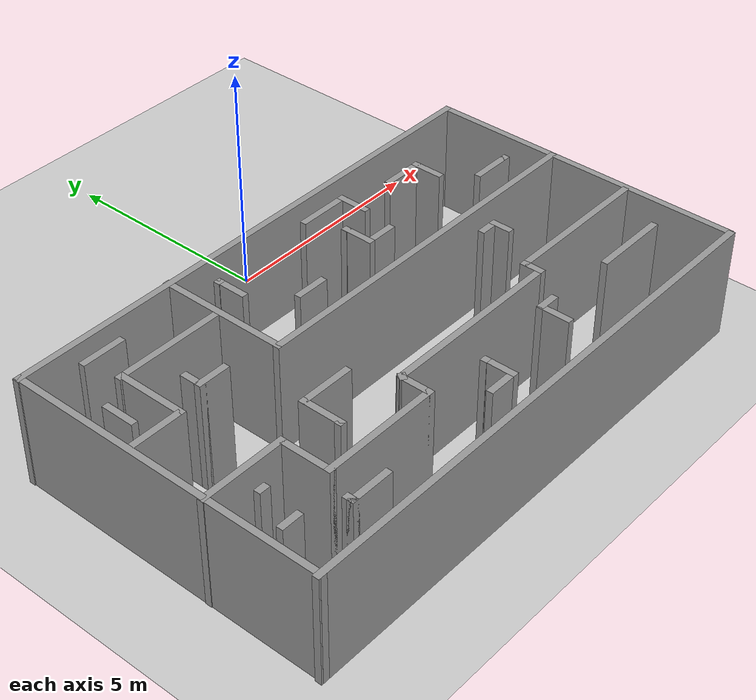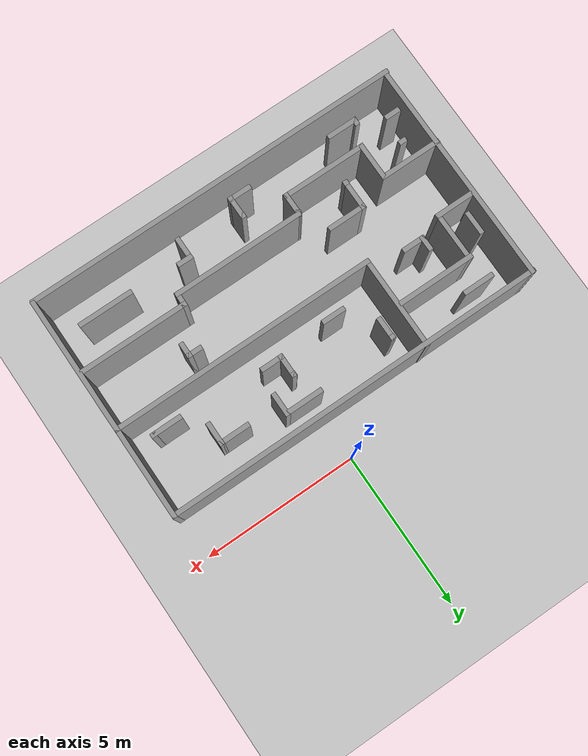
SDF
<?xml version="1.0" ?>
<sdf version="1.7">
  <world name="default">
    <include>
      <uri>model://sun</uri>
    </include>

    <include>
      <uri>model://ground_plane</uri>
    </include>

    <model name='project_map'>
      <pose>-0.977604 -4.28119 0 0 -0 0</pose>
      <link name='Wall_0'>
        <collision name='Wall_0_Collision'>
          <geometry>
            <box>
              <size>12.1867 0.15 2.5</size>
            </box>
          </geometry>
          <pose>0 0 1.25 0 -0 0</pose>
        </collision>
        <visual name='Wall_0_Visual'>
          <pose>0 0 1.25 0 -0 0</pose>
          <geometry>
            <box>
              <size>12.1867 0.15 2.5</size>
            </box>
          </geometry>
          <material>
            <script>
              <uri>file://media/materials/scripts/gazebo.material</uri>
              <name>Gazebo/Grey</name>
            </script>
            <ambient>1 1 1 1</ambient>
          </material>
          <meta>
            <layer>0</layer>
          </meta>
        </visual>
        <pose>0.010057 2.94007 0 0 -0 3.14159</pose>
      </link>
      <link name='Wall_101'>
        <collision name='Wall_101_Collision'>
          <geometry>
            <box>
              <size>0.25 0.15 2.5</size>
            </box>
          </geometry>
          <pose>0 0 1.25 0 -0 0</pose>
        </collision>
        <visual name='Wall_101_Visual'>
          <pose>0 0 1.25 0 -0 0</pose>
          <geometry>
            <box>
              <size>0.25 0.15 2.5</size>
            </box>
          </geometry>
          <material>
            <script>
              <uri>file://media/materials/scripts/gazebo.material</uri>
              <name>Gazebo/Grey</name>
            </script>
            <ambient>1 1 1 1</ambient>
          </material>
          <meta>
            <layer>0</layer>
          </meta>
        </visual>
        <pose>-4.43257 -3.45944 0 0 -0 -1.5708</pose>
      </link>
      <link name='Wall_102'>
        <collision name='Wall_102_Collision'>
          <geometry>
            <box>
              <size>1 0.15 2.5</size>
            </box>
          </geometry>
          <pose>0 0 1.25 0 -0 0</pose>
        </collision>
        <visual name='Wall_102_Visual'>
          <pose>0 0 1.25 0 -0 0</pose>
          <geometry>
            <box>
              <size>1 0.15 2.5</size>
            </box>
          </geometry>
          <material>
            <script>
              <uri>file://media/materials/scripts/gazebo.material</uri>
              <name>Gazebo/Grey</name>
            </script>
            <ambient>1 1 1 1</ambient>
          </material>
          <meta>
            <layer>0</layer>
          </meta>
        </visual>
        <pose>-4.00757 -3.50944 0 0 -0 0</pose>
      </link>
      <link name='Wall_107'>
        <collision name='Wall_107_Collision'>
          <geometry>
            <box>
              <size>0.5 0.15 2.5</size>
            </box>
          </geometry>
          <pose>0 0 1.25 0 -0 0</pose>
        </collision>
        <visual name='Wall_107_Visual'>
          <pose>0 0 1.25 0 -0 0</pose>
          <geometry>
            <box>
              <size>0.5 0.15 2.5</size>
            </box>
          </geometry>
          <material>
            <script>
              <uri>file://media/materials/scripts/gazebo.material</uri>
              <name>Gazebo/Grey</name>
            </script>
            <ambient>1 1 1 1</ambient>
          </material>
          <meta>
            <layer>0</layer>
          </meta>
        </visual>
        <pose>1.869 -2.7974 0 0 -0 3.14159</pose>
      </link>
      <link name='Wall_108'>
        <collision name='Wall_108_Collision'>
          <geometry>
            <box>
              <size>0.75 0.15 2.5</size>
            </box>
          </geometry>
          <pose>0 0 1.25 0 -0 0</pose>
        </collision>
        <visual name='Wall_108_Visual'>
          <pose>0 0 1.25 0 -0 0</pose>
          <geometry>
            <box>
              <size>0.75 0.15 2.5</size>
            </box>
          </geometry>
          <material>
            <script>
              <uri>file://media/materials/scripts/gazebo.material</uri>
              <name>Gazebo/Grey</name>
            </script>
            <ambient>1 1 1 1</ambient>
          </material>
          <meta>
            <layer>0</layer>
          </meta>
        </visual>
        <pose>1.694 -3.0974 0 0 -0 -1.5708</pose>
      </link>
      <link name='Wall_110'>
        <collision name='Wall_110_Collision'>
          <geometry>
            <box>
              <size>0.25 0.15 2.5</size>
            </box>
          </geometry>
          <pose>0 0 1.25 0 -0 0</pose>
        </collision>
        <visual name='Wall_110_Visual'>
          <pose>0 0 1.25 0 -0 0</pose>
          <geometry>
            <box>
              <size>0.25 0.15 2.5</size>
            </box>
          </geometry>
          <material>
            <script>
              <uri>file://media/materials/scripts/gazebo.material</uri>
              <name>Gazebo/Grey</name>
            </script>
            <ambient>1 1 1 1</ambient>
          </material>
          <meta>
            <layer>0</layer>
          </meta>
        </visual>
        <pose>-5.20723 -2.2141 0 0 -0 0</pose>
      </link>
      <link name='Wall_113'>
        <collision name='Wall_113_Collision'>
          <geometry>
            <box>
              <size>1 0.15 2.5</size>
            </box>
          </geometry>
          <pose>0 0 1.25 0 -0 0</pose>
        </collision>
        <visual name='Wall_113_Visual'>
          <pose>0 0 1.25 0 -0 0</pose>
          <geometry>
            <box>
              <size>1 0.15 2.5</size>
            </box>
          </geometry>
          <material>
            <script>
              <uri>file://media/materials/scripts/gazebo.material</uri>
              <name>Gazebo/Grey</name>
            </script>
            <ambient>1 1 1 1</ambient>
          </material>
          <meta>
            <layer>0</layer>
          </meta>
        </visual>
        <pose>3.45457 2.02986 0 0 -0 0</pose>
      </link>
      <link name='Wall_114'>
        <collision name='Wall_114_Collision'>
          <geometry>
            <box>
              <size>0.75 0.15 2.5</size>
            </box>
          </geometry>
          <pose>0 0 1.25 0 -0 0</pose>
        </collision>
        <visual name='Wall_114_Visual'>
          <pose>0 0 1.25 0 -0 0</pose>
          <geometry>
            <box>
              <size>0.75 0.15 2.5</size>
            </box>
          </geometry>
          <material>
            <script>
              <uri>file://media/materials/scripts/gazebo.material</uri>
              <name>Gazebo/Grey</name>
            </script>
            <ambient>1 1 1 1</ambient>
          </material>
          <meta>
            <layer>0</layer>
          </meta>
        </visual>
        <pose>3.87956 1.72986 0 0 -0 -1.5708</pose>
      </link>
      <link name='Wall_116'>
        <collision name='Wall_116_Collision'>
          <geometry>
            <box>
              <size>0.16 0.15 2.5</size>
            </box>
          </geometry>
          <pose>0 0 1.25 0 -0 0</pose>
        </collision>
        <visual name='Wall_116_Visual'>
          <pose>0 0 1.25 0 -0 0</pose>
          <geometry>
            <box>
              <size>0.16 0.15 2.5</size>
            </box>
          </geometry>
          <material>
            <script>
              <uri>file://media/materials/scripts/gazebo.material</uri>
              <name>Gazebo/Grey</name>
            </script>
            <ambient>1 1 1 1</ambient>
          </material>
          <meta>
            <layer>0</layer>
          </meta>
        </visual>
        <pose>5.28728 0.802933 0 0 -0 0</pose>
      </link>
      <link name='Wall_117'>
        <collision name='Wall_117_Collision'>
          <geometry>
            <box>
              <size>1 0.15 2.5</size>
            </box>
          </geometry>
          <pose>0 0 1.25 0 -0 0</pose>
        </collision>
        <visual name='Wall_117_Visual'>
          <pose>0 0 1.25 0 -0 0</pose>
          <geometry>
            <box>
              <size>1 0.15 2.5</size>
            </box>
          </geometry>
          <material>
            <script>
              <uri>file://media/materials/scripts/gazebo.material</uri>
              <name>Gazebo/Grey</name>
            </script>
            <ambient>1 1 1 1</ambient>
          </material>
          <meta>
            <layer>0</layer>
          </meta>
        </visual>
        <pose>4.86728 0.802933 0 0 -0 3.14159</pose>
      </link>
      <link name='Wall_119'>
        <collision name='Wall_119_Collision'>
          <geometry>
            <box>
              <size>0.5 0.15 2.5</size>
            </box>
          </geometry>
          <pose>0 0 1.25 0 -0 0</pose>
        </collision>
        <visual name='Wall_119_Visual'>
          <pose>0 0 1.25 0 -0 0</pose>
          <geometry>
            <box>
              <size>0.5 0.15 2.5</size>
            </box>
          </geometry>
          <material>
            <script>
              <uri>file://media/materials/scripts/gazebo.material</uri>
              <name>Gazebo/Grey</name>
            </script>
            <ambient>1 1 1 1</ambient>
          </material>
          <meta>
            <layer>0</layer>
          </meta>
        </visual>
        <pose>3.08684 -0.484335 0 0 -0 0</pose>
      </link>
      <link name='Wall_120'>
        <collision name='Wall_120_Collision'>
          <geometry>
            <box>
              <size>0.5 0.15 2.5</size>
            </box>
          </geometry>
          <pose>0 0 1.25 0 -0 0</pose>
        </collision>
        <visual name='Wall_120_Visual'>
          <pose>0 0 1.25 0 -0 0</pose>
          <geometry>
            <box>
              <size>0.5 0.15 2.5</size>
            </box>
          </geometry>
          <material>
            <script>
              <uri>file://media/materials/scripts/gazebo.material</uri>
              <name>Gazebo/Grey</name>
            </script>
            <ambient>1 1 1 1</ambient>
          </material>
          <meta>
            <layer>0</layer>
          </meta>
        </visual>
        <pose>3.26184 -0.659335 0 0 -0 -1.5708</pose>
      </link>
      <link name='Wall_122'>
        <collision name='Wall_122_Collision'>
          <geometry>
            <box>
              <size>0.5 0.15 2.5</size>
            </box>
          </geometry>
          <pose>0 0 1.25 0 -0 0</pose>
        </collision>
        <visual name='Wall_122_Visual'>
          <pose>0 0 1.25 0 -0 0</pose>
          <geometry>
            <box>
              <size>0.5 0.15 2.5</size>
            </box>
          </geometry>
          <material>
            <script>
              <uri>file://media/materials/scripts/gazebo.material</uri>
              <name>Gazebo/Grey</name>
            </script>
            <ambient>1 1 1 1</ambient>
          </material>
          <meta>
            <layer>0</layer>
          </meta>
        </visual>
        <pose>-4.01018 0.60782 0 0 -0 -1.5708</pose>
      </link>
      <link name='Wall_123'>
        <collision name='Wall_123_Collision'>
          <geometry>
            <box>
              <size>0.75 0.15 2.5</size>
            </box>
          </geometry>
          <pose>0 0 1.25 0 -0 0</pose>
        </collision>
        <visual name='Wall_123_Visual'>
          <pose>0 0 1.25 0 -0 0</pose>
          <geometry>
            <box>
              <size>0.75 0.15 2.5</size>
            </box>
          </geometry>
          <material>
            <script>
              <uri>file://media/materials/scripts/gazebo.material</uri>
              <name>Gazebo/Grey</name>
            </script>
            <ambient>1 1 1 1</ambient>
          </material>
          <meta>
            <layer>0</layer>
          </meta>
        </visual>
        <pose>-3.71019 0.43282 0 0 -0 0</pose>
      </link>
      <link name='Wall_125'>
        <collision name='Wall_125_Collision'>
          <geometry>
            <box>
              <size>0.16 0.15 2.5</size>
            </box>
          </geometry>
          <pose>0 0 1.25 0 -0 0</pose>
        </collision>
        <visual name='Wall_125_Visual'>
          <pose>0 0 1.25 0 -0 0</pose>
          <geometry>
            <box>
              <size>0.16 0.15 2.5</size>
            </box>
          </geometry>
          <material>
            <script>
              <uri>file://media/materials/scripts/gazebo.material</uri>
              <name>Gazebo/Grey</name>
            </script>
            <ambient>1 1 1 1</ambient>
          </material>
          <meta>
            <layer>0</layer>
          </meta>
        </visual>
        <pose>-3.16041 -2.11354 0 0 -0 0</pose>
      </link>
      <link name='Wall_126'>
        <collision name='Wall_126_Collision'>
          <geometry>
            <box>
              <size>1 0.15 2.5</size>
            </box>
          </geometry>
          <pose>0 0 1.25 0 -0 0</pose>
        </collision>
        <visual name='Wall_126_Visual'>
          <pose>0 0 1.25 0 -0 0</pose>
          <geometry>
            <box>
              <size>1 0.15 2.5</size>
            </box>
          </geometry>
          <material>
            <script>
              <uri>file://media/materials/scripts/gazebo.material</uri>
              <name>Gazebo/Grey</name>
            </script>
            <ambient>1 1 1 1</ambient>
          </material>
          <meta>
            <layer>0</layer>
          </meta>
        </visual>
        <pose>-3.15542 -1.68853 0 0 -0 1.5708</pose>
      </link>
      <link name='Wall_127'>
        <collision name='Wall_127_Collision'>
          <geometry>
            <box>
              <size>1.25 0.15 2.5</size>
            </box>
          </geometry>
          <pose>0 0 1.25 0 -0 0</pose>
        </collision>
        <visual name='Wall_127_Visual'>
          <pose>0 0 1.25 0 -0 0</pose>
          <geometry>
            <box>
              <size>1.25 0.15 2.5</size>
            </box>
          </geometry>
          <material>
            <script>
              <uri>file://media/materials/scripts/gazebo.material</uri>
              <name>Gazebo/Grey</name>
            </script>
            <ambient>1 1 1 1</ambient>
          </material>
          <meta>
            <layer>0</layer>
          </meta>
        </visual>
        <pose>-2.60541 -1.26354 0 0 -0 0</pose>
      </link>
      <link name='Wall_21'>
        <collision name='Wall_21_Collision'>
          <geometry>
            <box>
              <size>0.75 0.15 2.5</size>
            </box>
          </geometry>
          <pose>0 0 1.25 0 -0 0</pose>
        </collision>
        <visual name='Wall_21_Visual'>
          <pose>0 0 1.25 0 -0 0</pose>
          <geometry>
            <box>
              <size>0.75 0.15 2.5</size>
            </box>
          </geometry>
          <material>
            <script>
              <uri>file://media/materials/scripts/gazebo.material</uri>
              <name>Gazebo/Grey</name>
            </script>
            <ambient>1 1 1 1</ambient>
          </material>
          <meta>
            <layer>0</layer>
          </meta>
        </visual>
        <pose>-0.673036 0.84316 0 0 -0 0</pose>
      </link>
      <link name='Wall_23'>
        <collision name='Wall_23_Collision'>
          <geometry>
            <box>
              <size>0.16 0.15 2.5</size>
            </box>
          </geometry>
          <pose>0 0 1.25 0 -0 0</pose>
        </collision>
        <visual name='Wall_23_Visual'>
          <pose>0 0 1.25 0 -0 0</pose>
          <geometry>
            <box>
              <size>0.16 0.15 2.5</size>
            </box>
          </geometry>
          <material>
            <script>
              <uri>file://media/materials/scripts/gazebo.material</uri>
              <name>Gazebo/Grey</name>
            </script>
            <ambient>1 1 1 1</ambient>
          </material>
          <meta>
            <layer>0</layer>
          </meta>
        </visual>
        <pose>-1.67201 2.27122 0 0 -0 0</pose>
      </link>
      <link name='Wall_24'>
        <collision name='Wall_24_Collision'>
          <geometry>
            <box>
              <size>0.75 0.15 2.5</size>
            </box>
          </geometry>
          <pose>0 0 1.25 0 -0 0</pose>
        </collision>
        <visual name='Wall_24_Visual'>
          <pose>0 0 1.25 0 -0 0</pose>
          <geometry>
            <box>
              <size>0.75 0.15 2.5</size>
            </box>
          </geometry>
          <material>
            <script>
              <uri>file://media/materials/scripts/gazebo.material</uri>
              <name>Gazebo/Grey</name>
            </script>
            <ambient>1 1 1 1</ambient>
          </material>
          <meta>
            <layer>0</layer>
          </meta>
        </visual>
        <pose>-1.66701 1.97122 0 0 -0 -1.5708</pose>
      </link>
      <link name='Wall_42'>
        <collision name='Wall_42_Collision'>
          <geometry>
            <box>
              <size>1.25 0.15 2.5</size>
            </box>
          </geometry>
          <pose>0 0 1.25 0 -0 0</pose>
        </collision>
        <visual name='Wall_42_Visual'>
          <pose>0 0 1.25 0 -0 0</pose>
          <geometry>
            <box>
              <size>1.25 0.15 2.5</size>
            </box>
          </geometry>
          <material>
            <script>
              <uri>file://media/materials/scripts/gazebo.material</uri>
              <name>Gazebo/Grey</name>
            </script>
            <ambient>1 1 1 1</ambient>
          </material>
          <meta>
            <layer>0</layer>
          </meta>
        </visual>
        <pose>1.39343 2.37179 0 0 -0 3.14159</pose>
      </link>
      <link name='Wall_46'>
        <collision name='Wall_46_Collision'>
          <geometry>
            <box>
              <size>0.16 0.15 2.5</size>
            </box>
          </geometry>
          <pose>0 0 1.25 0 -0 0</pose>
        </collision>
        <visual name='Wall_46_Visual'>
          <pose>0 0 1.25 0 -0 0</pose>
          <geometry>
            <box>
              <size>0.16 0.15 2.5</size>
            </box>
          </geometry>
          <material>
            <script>
              <uri>file://media/materials/scripts/gazebo.material</uri>
              <name>Gazebo/Grey</name>
            </script>
            <ambient>1 1 1 1</ambient>
          </material>
          <meta>
            <layer>0</layer>
          </meta>
        </visual>
        <pose>1.18412 1.58736 0 0 -0 0</pose>
      </link>
      <link name='Wall_47'>
        <collision name='Wall_47_Collision'>
          <geometry>
            <box>
              <size>0.75 0.15 2.5</size>
            </box>
          </geometry>
          <pose>0 0 1.25 0 -0 0</pose>
        </collision>
        <visual name='Wall_47_Visual'>
          <pose>0 0 1.25 0 -0 0</pose>
          <geometry>
            <box>
              <size>0.75 0.15 2.5</size>
            </box>
          </geometry>
          <material>
            <script>
              <uri>file://media/materials/scripts/gazebo.material</uri>
              <name>Gazebo/Grey</name>
            </script>
            <ambient>1 1 1 1</ambient>
          </material>
          <meta>
            <layer>0</layer>
          </meta>
        </visual>
        <pose>1.18912 1.28736 0 0 -0 -1.5708</pose>
      </link>
      <link name='Wall_48'>
        <collision name='Wall_48_Collision'>
          <geometry>
            <box>
              <size>0.75 0.15 2.5</size>
            </box>
          </geometry>
          <pose>0 0 1.25 0 -0 0</pose>
        </collision>
        <visual name='Wall_48_Visual'>
          <pose>0 0 1.25 0 -0 0</pose>
          <geometry>
            <box>
              <size>0.75 0.15 2.5</size>
            </box>
          </geometry>
          <material>
            <script>
              <uri>file://media/materials/scripts/gazebo.material</uri>
              <name>Gazebo/Grey</name>
            </script>
            <ambient>1 1 1 1</ambient>
          </material>
          <meta>
            <layer>0</layer>
          </meta>
        </visual>
        <pose>1.48912 0.987363 0 0 -0 0</pose>
      </link>
      <link name='Wall_50'>
        <collision name='Wall_50_Collision'>
          <geometry>
            <box>
              <size>7.29661 0.15 2.5</size>
            </box>
          </geometry>
          <pose>0 0 1.25 0 -0 0</pose>
        </collision>
        <visual name='Wall_50_Visual'>
          <pose>0 0 1.25 0 -0 0</pose>
          <geometry>
            <box>
              <size>7.29661 0.15 2.5</size>
            </box>
          </geometry>
          <material>
            <script>
              <uri>file://media/materials/scripts/gazebo.material</uri>
              <name>Gazebo/Grey</name>
            </script>
            <ambient>1 1 1 1</ambient>
          </material>
          <meta>
            <layer>0</layer>
          </meta>
        </visual>
        <pose>-5.98818 -0.632878 0 0 -0 -1.5708</pose>
      </link>
      <link name='Wall_53'>
        <collision name='Wall_53_Collision'>
          <geometry>
            <box>
              <size>12.1867 0.15 2.5</size>
            </box>
          </geometry>
          <pose>0 0 1.25 0 -0 0</pose>
        </collision>
        <visual name='Wall_53_Visual'>
          <pose>0 0 1.25 0 -0 0</pose>
          <geometry>
            <box>
              <size>12.1867 0.15 2.5</size>
            </box>
          </geometry>
          <material>
            <script>
              <uri>file://media/materials/scripts/gazebo.material</uri>
              <name>Gazebo/Grey</name>
            </script>
            <ambient>1 1 1 1</ambient>
          </material>
          <meta>
            <layer>0</layer>
          </meta>
        </visual>
        <pose>-0.010057 -4.20583 0 0 -0 3.14159</pose>
      </link>
      <link name='Wall_57'>
        <collision name='Wall_57_Collision'>
          <geometry>
            <box>
              <size>1.62068 0.15 2.5</size>
            </box>
          </geometry>
          <pose>0 0 1.25 0 -0 0</pose>
        </collision>
        <visual name='Wall_57_Visual'>
          <pose>0 0 1.25 0 -0 0</pose>
          <geometry>
            <box>
              <size>1.62068 0.15 2.5</size>
            </box>
          </geometry>
          <material>
            <script>
              <uri>file://media/materials/scripts/gazebo.material</uri>
              <name>Gazebo/Grey</name>
            </script>
            <ambient>1 1 1 1</ambient>
          </material>
          <meta>
            <layer>0</layer>
          </meta>
        </visual>
        <pose>-4.7591 0.887185 0 0 -0 -1.5708</pose>
      </link>
      <link name='Wall_58'>
        <collision name='Wall_58_Collision'>
          <geometry>
            <box>
              <size>1.25 0.15 2.5</size>
            </box>
          </geometry>
          <pose>0 0 1.25 0 -0 0</pose>
        </collision>
        <visual name='Wall_58_Visual'>
          <pose>0 0 1.25 0 -0 0</pose>
          <geometry>
            <box>
              <size>1.25 0.15 2.5</size>
            </box>
          </geometry>
          <material>
            <script>
              <uri>file://media/materials/scripts/gazebo.material</uri>
              <name>Gazebo/Grey</name>
            </script>
            <ambient>1 1 1 1</ambient>
          </material>
          <meta>
            <layer>0</layer>
          </meta>
        </visual>
        <pose>-5.3091 0.151844 0 0 -0 3.14159</pose>
      </link>
      <link name='Wall_60'>
        <collision name='Wall_60_Collision'>
          <geometry>
            <box>
              <size>3 0.15 2.5</size>
            </box>
          </geometry>
          <pose>0 0 1.25 0 -0 0</pose>
        </collision>
        <visual name='Wall_60_Visual'>
          <pose>0 0 1.25 0 -0 0</pose>
          <geometry>
            <box>
              <size>3 0.15 2.5</size>
            </box>
          </geometry>
          <material>
            <script>
              <uri>file://media/materials/scripts/gazebo.material</uri>
              <name>Gazebo/Grey</name>
            </script>
            <ambient>1 1 1 1</ambient>
          </material>
          <meta>
            <layer>0</layer>
          </meta>
        </visual>
        <pose>-2.33728 1.53662 0 0 -0 1.5708</pose>
      </link>
      <link name='Wall_62'>
        <collision name='Wall_62_Collision'>
          <geometry>
            <box>
              <size>1 0.15 2.5</size>
            </box>
          </geometry>
          <pose>0 0 1.25 0 -0 0</pose>
        </collision>
        <visual name='Wall_62_Visual'>
          <pose>0 0 1.25 0 -0 0</pose>
          <geometry>
            <box>
              <size>1 0.15 2.5</size>
            </box>
          </geometry>
          <material>
            <script>
              <uri>file://media/materials/scripts/gazebo.material</uri>
              <name>Gazebo/Grey</name>
            </script>
            <ambient>1 1 1 1</ambient>
          </material>
          <meta>
            <layer>0</layer>
          </meta>
        </visual>
        <pose>-4.53052 2.3919 0 0 -0 0</pose>
      </link>
      <link name='Wall_67'>
        <collision name='Wall_67_Collision'>
          <geometry>
            <box>
              <size>0.75 0.15 2.5</size>
            </box>
          </geometry>
          <pose>0 0 1.25 0 -0 0</pose>
        </collision>
        <visual name='Wall_67_Visual'>
          <pose>0 0 1.25 0 -0 0</pose>
          <geometry>
            <box>
              <size>0.75 0.15 2.5</size>
            </box>
          </geometry>
          <material>
            <script>
              <uri>file://media/materials/scripts/gazebo.material</uri>
              <name>Gazebo/Grey</name>
            </script>
            <ambient>1 1 1 1</ambient>
          </material>
          <meta>
            <layer>0</layer>
          </meta>
        </visual>
        <pose>-5.47848 0.901798 0 0 -0 1.5708</pose>
      </link>
      <link name='Wall_71'>
        <collision name='Wall_71_Collision'>
          <geometry>
            <box>
              <size>8.5 0.15 2.5</size>
            </box>
          </geometry>
          <pose>0 0 1.25 0 -0 0</pose>
        </collision>
        <visual name='Wall_71_Visual'>
          <pose>0 0 1.25 0 -0 0</pose>
          <geometry>
            <box>
              <size>8.5 0.15 2.5</size>
            </box>
          </geometry>
          <material>
            <script>
              <uri>file://media/materials/scripts/gazebo.material</uri>
              <name>Gazebo/Grey</name>
            </script>
            <ambient>1 1 1 1</ambient>
          </material>
          <meta>
            <layer>0</layer>
          </meta>
        </visual>
        <pose>1.83772 0.111617 0 0 -0 0</pose>
      </link>
      <link name='Wall_74'>
        <collision name='Wall_74_Collision'>
          <geometry>
            <box>
              <size>0.75 0.15 2.5</size>
            </box>
          </geometry>
          <pose>0 0 1.25 0 -0 0</pose>
        </collision>
        <visual name='Wall_74_Visual'>
          <pose>0 0 1.25 0 -0 0</pose>
          <geometry>
            <box>
              <size>0.75 0.15 2.5</size>
            </box>
          </geometry>
          <material>
            <script>
              <uri>file://media/materials/scripts/gazebo.material</uri>
              <name>Gazebo/Grey</name>
            </script>
            <ambient>1 1 1 1</ambient>
          </material>
          <meta>
            <layer>0</layer>
          </meta>
        </visual>
        <pose>1.94343 2.07179 0 0 -0 -1.5708</pose>
      </link>
      <link name='Wall_76'>
        <collision name='Wall_76_Collision'>
          <geometry>
            <box>
              <size>2 0.15 2.5</size>
            </box>
          </geometry>
          <pose>0 0 1.25 0 -0 0</pose>
        </collision>
        <visual name='Wall_76_Visual'>
          <pose>0 0 1.25 0 -0 0</pose>
          <geometry>
            <box>
              <size>2 0.15 2.5</size>
            </box>
          </geometry>
          <material>
            <script>
              <uri>file://media/materials/scripts/gazebo.material</uri>
              <name>Gazebo/Grey</name>
            </script>
            <ambient>1 1 1 1</ambient>
          </material>
          <meta>
            <layer>0</layer>
          </meta>
        </visual>
        <pose>-5.07643 -1.65092 0 0 -0 0</pose>
      </link>
      <link name='Wall_77'>
        <collision name='Wall_77_Collision'>
          <geometry>
            <box>
              <size>1.25 0.15 2.5</size>
            </box>
          </geometry>
          <pose>0 0 1.25 0 -0 0</pose>
        </collision>
        <visual name='Wall_77_Visual'>
          <pose>0 0 1.25 0 -0 0</pose>
          <geometry>
            <box>
              <size>1.25 0.15 2.5</size>
            </box>
          </geometry>
          <material>
            <script>
              <uri>file://media/materials/scripts/gazebo.material</uri>
              <name>Gazebo/Grey</name>
            </script>
            <ambient>1 1 1 1</ambient>
          </material>
          <meta>
            <layer>0</layer>
          </meta>
        </visual>
        <pose>-4.15143 -2.20092 0 0 -0 -1.5708</pose>
      </link>
      <link name='Wall_78'>
        <collision name='Wall_78_Collision'>
          <geometry>
            <box>
              <size>2.75 0.15 2.5</size>
            </box>
          </geometry>
          <pose>0 0 1.25 0 -0 0</pose>
        </collision>
        <visual name='Wall_78_Visual'>
          <pose>0 0 1.25 0 -0 0</pose>
          <geometry>
            <box>
              <size>2.75 0.15 2.5</size>
            </box>
          </geometry>
          <material>
            <script>
              <uri>file://media/materials/scripts/gazebo.material</uri>
              <name>Gazebo/Grey</name>
            </script>
            <ambient>1 1 1 1</ambient>
          </material>
          <meta>
            <layer>0</layer>
          </meta>
        </visual>
        <pose>-2.85143 -2.75092 0 0 -0 0</pose>
      </link>
      <link name='Wall_79'>
        <collision name='Wall_79_Collision'>
          <geometry>
            <box>
              <size>0.75 0.15 2.5</size>
            </box>
          </geometry>
          <pose>0 0 1.25 0 -0 0</pose>
        </collision>
        <visual name='Wall_79_Visual'>
          <pose>0 0 1.25 0 -0 0</pose>
          <geometry>
            <box>
              <size>0.75 0.15 2.5</size>
            </box>
          </geometry>
          <material>
            <script>
              <uri>file://media/materials/scripts/gazebo.material</uri>
              <name>Gazebo/Grey</name>
            </script>
            <ambient>1 1 1 1</ambient>
          </material>
          <meta>
            <layer>0</layer>
          </meta>
        </visual>
        <pose>-1.55143 -2.45092 0 0 -0 1.5708</pose>
      </link>
      <link name='Wall_84'>
        <collision name='Wall_84_Collision'>
          <geometry>
            <box>
              <size>1.75 0.15 2.5</size>
            </box>
          </geometry>
          <pose>0 0 1.25 0 -0 0</pose>
        </collision>
        <visual name='Wall_84_Visual'>
          <pose>0 0 1.25 0 -0 0</pose>
          <geometry>
            <box>
              <size>1.75 0.15 2.5</size>
            </box>
          </geometry>
          <material>
            <script>
              <uri>file://media/materials/scripts/gazebo.material</uri>
              <name>Gazebo/Grey</name>
            </script>
            <ambient>1 1 1 1</ambient>
          </material>
          <meta>
            <layer>0</layer>
          </meta>
        </visual>
        <pose>4.44857 -2.90092 0 0 -0 0</pose>
      </link>
      <link name='Wall_86'>
        <collision name='Wall_86_Collision'>
          <geometry>
            <box>
              <size>0.195095 0.15 2.5</size>
            </box>
          </geometry>
          <pose>0 0 1.25 0 -0 0</pose>
        </collision>
        <visual name='Wall_86_Visual'>
          <pose>0 0 1.25 0 -0 0</pose>
          <geometry>
            <box>
              <size>0.195095 0.15 2.5</size>
            </box>
          </geometry>
          <material>
            <script>
              <uri>file://media/materials/scripts/gazebo.material</uri>
              <name>Gazebo/Grey</name>
            </script>
            <ambient>1 1 1 1</ambient>
          </material>
          <meta>
            <layer>0</layer>
          </meta>
        </visual>
        <pose>-1.53882 -2.13223 0 0 -0 0.977485</pose>
      </link>
      <link name='Wall_87'>
        <collision name='Wall_87_Collision'>
          <geometry>
            <box>
              <size>4.25 0.15 2.5</size>
            </box>
          </geometry>
          <pose>0 0 1.25 0 -0 0</pose>
        </collision>
        <visual name='Wall_87_Visual'>
          <pose>0 0 1.25 0 -0 0</pose>
          <geometry>
            <box>
              <size>4.25 0.15 2.5</size>
            </box>
          </geometry>
          <material>
            <script>
              <uri>file://media/materials/scripts/gazebo.material</uri>
              <name>Gazebo/Grey</name>
            </script>
            <ambient>1 1 1 1</ambient>
          </material>
          <meta>
            <layer>0</layer>
          </meta>
        </visual>
        <pose>0.523784 -2.11353 0 0 -0 0</pose>
      </link>
      <link name='Wall_9'>
        <collision name='Wall_9_Collision'>
          <geometry>
            <box>
              <size>2.5 0.15 2.5</size>
            </box>
          </geometry>
          <pose>0 0 1.25 0 -0 0</pose>
        </collision>
        <visual name='Wall_9_Visual'>
          <pose>0 0 1.25 0 -0 0</pose>
          <geometry>
            <box>
              <size>2.5 0.15 2.5</size>
            </box>
          </geometry>
          <material>
            <script>
              <uri>file://media/materials/scripts/gazebo.material</uri>
              <name>Gazebo/Grey</name>
            </script>
            <ambient>1 1 1 1</ambient>
          </material>
          <meta>
            <layer>0</layer>
          </meta>
        </visual>
        <pose>-3.62433 1.62252 0 0 -0 0</pose>
      </link>
      <link name='Wall_90'>
        <collision name='Wall_90_Collision'>
          <geometry>
            <box>
              <size>0.5 0.15 2.5</size>
            </box>
          </geometry>
          <pose>0 0 1.25 0 -0 0</pose>
        </collision>
        <visual name='Wall_90_Visual'>
          <pose>0 0 1.25 0 -0 0</pose>
          <geometry>
            <box>
              <size>0.5 0.15 2.5</size>
            </box>
          </geometry>
          <material>
            <script>
              <uri>file://media/materials/scripts/gazebo.material</uri>
              <name>Gazebo/Grey</name>
            </script>
            <ambient>1 1 1 1</ambient>
          </material>
          <meta>
            <layer>0</layer>
          </meta>
        </visual>
        <pose>2.57378 -1.93853 0 0 -0 1.5708</pose>
      </link>
      <link name='Wall_91'>
        <collision name='Wall_91_Collision'>
          <geometry>
            <box>
              <size>3.5 0.15 2.5</size>
            </box>
          </geometry>
          <pose>0 0 1.25 0 -0 0</pose>
        </collision>
        <visual name='Wall_91_Visual'>
          <pose>0 0 1.25 0 -0 0</pose>
          <geometry>
            <box>
              <size>3.5 0.15 2.5</size>
            </box>
          </geometry>
          <material>
            <script>
              <uri>file://media/materials/scripts/gazebo.material</uri>
              <name>Gazebo/Grey</name>
            </script>
            <ambient>1 1 1 1</ambient>
          </material>
          <meta>
            <layer>0</layer>
          </meta>
        </visual>
        <pose>4.24878 -1.76354 0 0 -0 0</pose>
      </link>
      <link name='Wall_93'>
        <collision name='Wall_93_Collision'>
          <geometry>
            <box>
              <size>7.25 0.15 2.5</size>
            </box>
          </geometry>
          <pose>0 0 1.25 0 -0 0</pose>
        </collision>
        <visual name='Wall_93_Visual'>
          <pose>0 0 1.25 0 -0 0</pose>
          <geometry>
            <box>
              <size>7.25 0.15 2.5</size>
            </box>
          </geometry>
          <material>
            <script>
              <uri>file://media/materials/scripts/gazebo.material</uri>
              <name>Gazebo/Grey</name>
            </script>
            <ambient>1 1 1 1</ambient>
          </material>
          <meta>
            <layer>0</layer>
          </meta>
        </visual>
        <pose>6.02841 -0.609926 0 0 -0 -1.5708</pose>
      </link>
      <link name='Wall_95'>
        <collision name='Wall_95_Collision'>
          <geometry>
            <box>
              <size>0.16 0.15 2.5</size>
            </box>
          </geometry>
          <pose>0 0 1.25 0 -0 0</pose>
        </collision>
        <visual name='Wall_95_Visual'>
          <pose>0 0 1.25 0 -0 0</pose>
          <geometry>
            <box>
              <size>0.16 0.15 2.5</size>
            </box>
          </geometry>
          <material>
            <script>
              <uri>file://media/materials/scripts/gazebo.material</uri>
              <name>Gazebo/Grey</name>
            </script>
            <ambient>1 1 1 1</ambient>
          </material>
          <meta>
            <layer>0</layer>
          </meta>
        </visual>
        <pose>-0.20372 -2.95831 0 0 -0 0</pose>
      </link>
      <link name='Wall_96'>
        <collision name='Wall_96_Collision'>
          <geometry>
            <box>
              <size>0.75 0.15 2.5</size>
            </box>
          </geometry>
          <pose>0 0 1.25 0 -0 0</pose>
        </collision>
        <visual name='Wall_96_Visual'>
          <pose>0 0 1.25 0 -0 0</pose>
          <geometry>
            <box>
              <size>0.75 0.15 2.5</size>
            </box>
          </geometry>
          <material>
            <script>
              <uri>file://media/materials/scripts/gazebo.material</uri>
              <name>Gazebo/Grey</name>
            </script>
            <ambient>1 1 1 1</ambient>
          </material>
          <meta>
            <layer>0</layer>
          </meta>
        </visual>
        <pose>-0.19872 -3.25831 0 0 -0 -1.5708</pose>
      </link>
      <link name='Wall_97'>
        <collision name='Wall_97_Collision'>
          <geometry>
            <box>
              <size>0.75 0.15 2.5</size>
            </box>
          </geometry>
          <pose>0 0 1.25 0 -0 0</pose>
        </collision>
        <visual name='Wall_97_Visual'>
          <pose>0 0 1.25 0 -0 0</pose>
          <geometry>
            <box>
              <size>0.75 0.15 2.5</size>
            </box>
          </geometry>
          <material>
            <script>
              <uri>file://media/materials/scripts/gazebo.material</uri>
              <name>Gazebo/Grey</name>
            </script>
            <ambient>1 1 1 1</ambient>
          </material>
          <meta>
            <layer>0</layer>
          </meta>
        </visual>
        <pose>-0.49872 -3.5583 0 0 -0 3.14159</pose>
      </link>
      <link name='Wall_99'>
        <collision name='Wall_99_Collision'>
          <geometry>
            <box>
              <size>0.5 0.15 2.5</size>
            </box>
          </geometry>
          <pose>0 0 1.25 0 -0 0</pose>
        </collision>
        <visual name='Wall_99_Visual'>
          <pose>0 0 1.25 0 -0 0</pose>
          <geometry>
            <box>
              <size>0.5 0.15 2.5</size>
            </box>
          </geometry>
          <material>
            <script>
              <uri>file://media/materials/scripts/gazebo.material</uri>
              <name>Gazebo/Grey</name>
            </script>
            <ambient>1 1 1 1</ambient>
          </material>
          <meta>
            <layer>0</layer>
          </meta>
        </visual>
        <pose>-5.44427 -3.05887 0 0 -0 0</pose>
      </link>
      <static>1</static>
    </model>
  </world>
</sdf>
